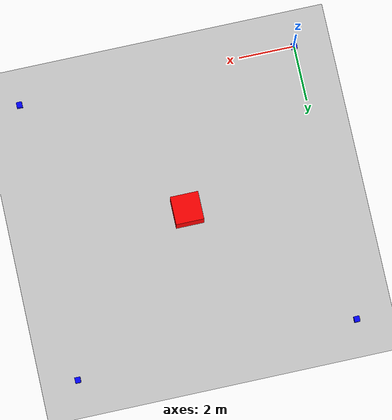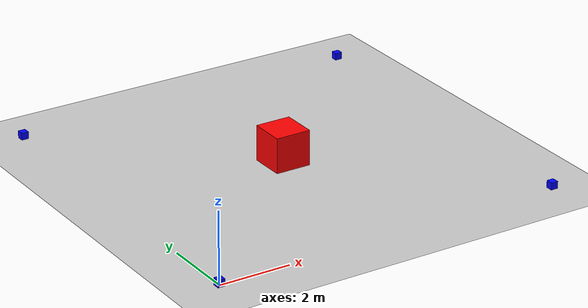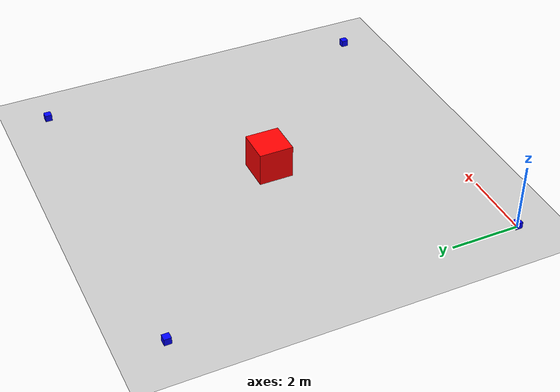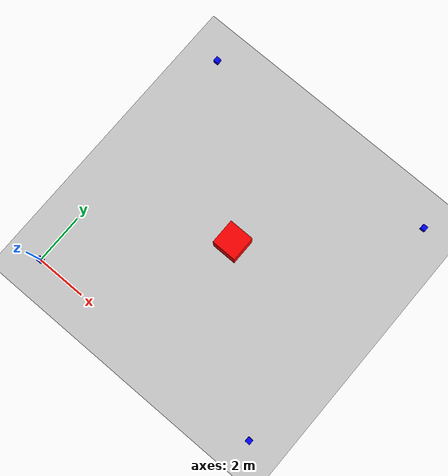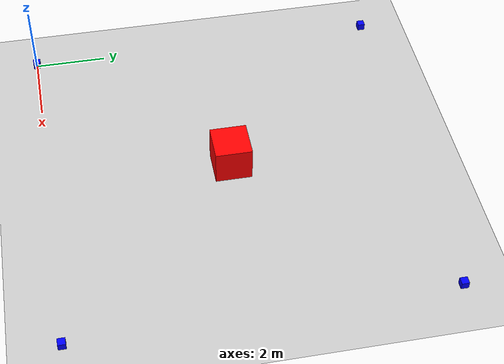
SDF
<?xml version="1.0" ?>
<sdf version="1.6">
  <world name="ble_world">
    <!-- 可選的光源和地板 -->
    <include><uri>model://sun</uri></include>
    <include><uri>model://ground_plane</uri></include>

    <!-- 四個藍色正方形 beacon -->
    <model name="ble_beacon_1">
      <static>true</static>
      <pose>0 0 0.1 0 0 0</pose>
      <link name="link">
        <visual name="visual">
          <geometry><box><size>0.2 0.2 0.2</size></box></geometry>
          <material><ambient>0 0 1 1</ambient><diffuse>0 0 1 1</diffuse></material>
        </visual>
      </link>
    </model>

    <model name="ble_beacon_2">
      <static>true</static>
      <pose>10 0 0.1 0 0 0</pose>
      <link name="link">
        <visual name="visual">
          <geometry><box><size>0.2 0.2 0.2</size></box></geometry>
          <material><ambient>0 0 1 1</ambient><diffuse>0 0 1 1</diffuse></material>
        </visual>
      </link>
    </model>

    <model name="ble_beacon_3">
      <static>true</static>
      <pose>0 10 0.1 0 0 0</pose>
      <link name="link">
        <visual name="visual">
          <geometry><box><size>0.2 0.2 0.2</size></box></geometry>
          <material><ambient>0 0 1 1</ambient><diffuse>0 0 1 1</diffuse></material>
        </visual>
      </link>
    </model>

    <model name="ble_beacon_4">
      <static>true</static>
      <pose>10 10 0.1 0 0 0</pose>
      <link name="link">
        <visual name="visual">
          <geometry><box><size>0.2 0.2 0.2</size></box></geometry>
          <material><ambient>0 0 1 1</ambient><diffuse>0 0 1 1</diffuse></material>
        </visual>
      </link>
    </model>

    <!-- 中央掃描目標 - 紅色立方體作為視覺標記 -->
    <model name="scan_target">
      <static>true</static>
      <pose>5 5 0.5 0 0 0</pose>
      <link name="link">
        <visual name="visual">
          <geometry><box><size>1.0 1.0 1.0</size></box></geometry>
          <material><ambient>1 0 0 1</ambient><diffuse>1 0 0 1</diffuse></material>
        </visual>
        <collision name="collision">
          <geometry><box><size>1.0 1.0 1.0</size></box></geometry>
        </collision>
      </link>
    </model>

    <!-- 可選：加入 world plugin 控制 beacon 插入行為 -->
    <!-- 若需依據 ROS TF 或 range heuristic 模擬 beacon 廣播，可寫一個 world-plugin -->
  </world>
</sdf>
